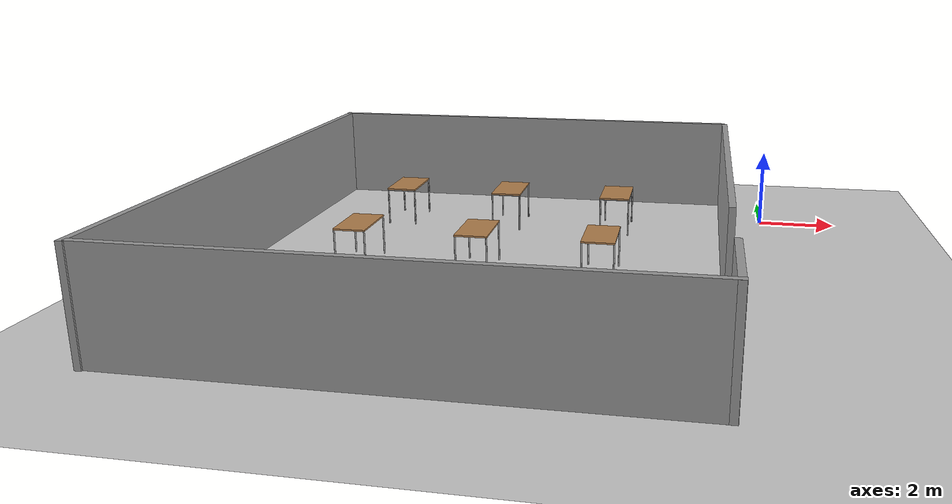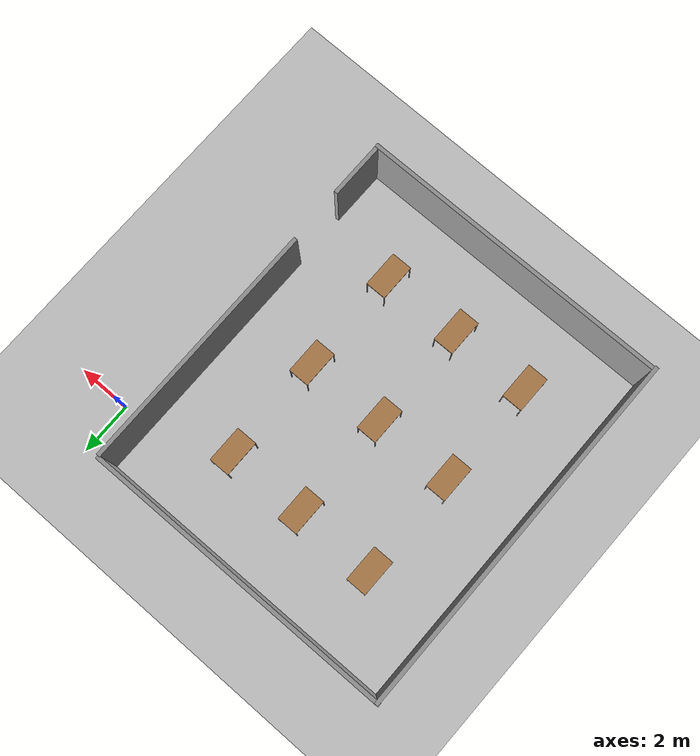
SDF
<sdf version="1.6">
 <world name="default">
  <model name="ground_plane">
   <static>1</static>
   <link name="link">
    <collision name="collision">
     <geometry><plane><normal>0 0 1</normal><size>100 100</size></plane></geometry>
     <surface><friction><ode><mu>100</mu><mu2>50</mu2></ode></friction></surface>
    </collision>
    <visual name="visual">
     <cast_shadows>0</cast_shadows>
     <geometry><plane><normal>0 0 1</normal><size>100 100</size></plane></geometry>
     <material>
      <script><uri>file://media/materials/scripts/gazebo.material</uri><name>Gazebo/Grey</name></script>
     </material>
    </visual>
   </link>
  </model>
  <light name="sun" type="directional">
   <pose>0 0 10 0 -0 0</pose>
   <diffuse>0.8 0.8 0.8 1</diffuse>
   <specular>0.1 0.1 0.1 1</specular>
   <attenuation>
    <range>1000</range>
    <constant>0.9</constant>
    <linear>0.01</linear>
    <quadratic>0.001</quadratic>
   </attenuation>
   <direction>-0.5 0.5 -1</direction>
  </light>
  <gravity>0 0 -9.8</gravity>
  <magnetic_field>6e-06 2.3e-05 -4.2e-05</magnetic_field>
  <atmosphere type="adiabatic"/>
  <physics name="default_physics" default="0" type="ode">
   <max_step_size>0.001</max_step_size>
   <real_time_factor>1</real_time_factor>
   <real_time_update_rate>1000</real_time_update_rate>
  </physics>
  <scene><ambient>0.4 0.4 0.4 1</ambient><background>0.7 0.7 0.7 1</background><shadows>1</shadows></scene>
  <spherical_coordinates>
   <surface_model>EARTH_WGS84</surface_model>
   <latitude_deg>0</latitude_deg>
   <longitude_deg>0</longitude_deg>
   <elevation>0</elevation>
   <heading_deg>0</heading_deg>
  </spherical_coordinates>
  <model name="room_0_clone_1_clone">
   <link name="Wall_11">
    <pose>-7.27476 -5.96527 0 0 -0 3.14159</pose>
    <visual name="Wall_11_Visual">
     <pose>0 0 1.25 0 -0 0</pose>
     <geometry><box><size>2.25 0.15 2.5</size></box></geometry>
     <material>
      <script><uri>file://media/materials/scripts/gazebo.material</uri><name>Gazebo/Grey</name></script>
      <ambient>1 1 1 1</ambient>
      <diffuse>0.7 0.7 0.7 1</diffuse>
      <specular>0.01 0.01 0.01 1</specular>
      <emissive>0 0 0 1</emissive>
     </material>
    </visual>
    <collision name="Wall_11_Collision">
     <pose>0 0 1.25 0 -0 0</pose>
     <geometry><box><size>2.25 0.15 2.5</size></box></geometry>
     <surface>
      <friction>
       <ode><mu>1</mu><mu2>1</mu2><fdir1>0 0 0</fdir1><slip1>0</slip1><slip2>0</slip2></ode>
       <torsional>
        <coefficient>1</coefficient>
        <patch_radius>0</patch_radius>
        <surface_radius>0</surface_radius>
        <use_patch_radius>1</use_patch_radius>
        <ode><slip>0</slip></ode>
       </torsional>
      </friction>
      <bounce><restitution_coefficient>0</restitution_coefficient><threshold>1e+06</threshold></bounce>
      <contact>
       <collide_without_contact>0</collide_without_contact>
       <collide_without_contact_bitmask>1</collide_without_contact_bitmask>
       <collide_bitmask>1</collide_bitmask>
       <ode>
        <soft_cfm>0</soft_cfm>
        <soft_erp>0.2</soft_erp>
        <kp>1e+13</kp>
        <kd>1</kd>
        <max_vel>0.01</max_vel>
        <min_depth>0</min_depth>
       </ode>
       <bullet>
        <split_impulse>1</split_impulse>
        <split_impulse_penetration_threshold>-0.01</split_impulse_penetration_threshold>
        <soft_cfm>0</soft_cfm>
        <soft_erp>0.2</soft_erp>
        <kp>1e+13</kp>
        <kd>1</kd>
       </bullet>
      </contact>
     </surface>
    </collision>
   </link>
   <link name="Wall_12">
    <pose>-8.32013 -0.128243 0 0 -0 1.5708</pose>
    <inertial>
     <inertia><ixx>nan</ixx><ixy>0</ixy><ixz>0</ixz><iyy>nan</iyy><iyz>0</iyz><izz>nan</izz></inertia>
     <mass>0</mass>
    </inertial>
    <visual name="Wall_12_Visual">
     <pose>0 0 1.25 0 -0 0</pose>
     <geometry><box><size>11.8388 0.15 2.5</size></box></geometry>
     <material>
      <script><uri>file://media/materials/scripts/gazebo.material</uri><name>Gazebo/Grey</name></script>
      <ambient>1 1 1 1</ambient>
      <diffuse>0.7 0.7 0.7 1</diffuse>
      <specular>0.01 0.01 0.01 1</specular>
      <emissive>0 0 0 1</emissive>
     </material>
    </visual>
    <collision name="Wall_12_Collision">
     <pose>0 0 1.25 0 -0 0</pose>
     <geometry><box><size>11.8388 0.15 2.5</size></box></geometry>
     <surface>
      <friction>
       <ode><mu>1</mu><mu2>1</mu2><fdir1>0 0 0</fdir1><slip1>0</slip1><slip2>0</slip2></ode>
       <torsional>
        <coefficient>1</coefficient>
        <patch_radius>0</patch_radius>
        <surface_radius>0</surface_radius>
        <use_patch_radius>1</use_patch_radius>
        <ode><slip>0</slip></ode>
       </torsional>
      </friction>
      <bounce><restitution_coefficient>0</restitution_coefficient><threshold>1e+06</threshold></bounce>
      <contact>
       <collide_without_contact>0</collide_without_contact>
       <collide_without_contact_bitmask>1</collide_without_contact_bitmask>
       <collide_bitmask>1</collide_bitmask>
       <ode>
        <soft_cfm>0</soft_cfm>
        <soft_erp>0.2</soft_erp>
        <kp>1e+13</kp>
        <kd>1</kd>
        <max_vel>0.01</max_vel>
        <min_depth>0</min_depth>
       </ode>
       <bullet>
        <split_impulse>1</split_impulse>
        <split_impulse_penetration_threshold>-0.01</split_impulse_penetration_threshold>
        <soft_cfm>0</soft_cfm>
        <soft_erp>0.2</soft_erp>
        <kp>1e+13</kp>
        <kd>1</kd>
       </bullet>
      </contact>
     </surface>
    </collision>
   </link>
   <link name="Wall_12_clone">
    <pose>5.50521 -0.011416 0 0 -0 1.57222</pose>
    <inertial>
     <inertia><ixx>nan</ixx><ixy>0</ixy><ixz>0</ixz><iyy>nan</iyy><iyz>0</iyz><izz>nan</izz></inertia>
     <mass>0</mass>
    </inertial>
    <visual name="Wall_12_Visual">
     <pose>0 0 1.25 0 -0 0</pose>
     <geometry><box><size>11.8388 0.15 2.5</size></box></geometry>
     <material>
      <script><uri>file://media/materials/scripts/gazebo.material</uri><name>Gazebo/Grey</name></script>
      <ambient>1 1 1 1</ambient>
      <diffuse>0.7 0.7 0.7 1</diffuse>
      <specular>0.01 0.01 0.01 1</specular>
      <emissive>0 0 0 1</emissive>
      <shader type="pixel"/>
     </material>
    </visual>
    <collision name="Wall_12_Collision">
     <pose>0 0 1.25 0 -0 0</pose>
     <geometry><box><size>11.8388 0.15 2.5</size></box></geometry>
     <surface>
      <friction>
       <ode><mu>1</mu><mu2>1</mu2><fdir1>0 0 0</fdir1><slip1>0</slip1><slip2>0</slip2></ode>
       <torsional>
        <coefficient>1</coefficient>
        <patch_radius>0</patch_radius>
        <surface_radius>0</surface_radius>
        <use_patch_radius>1</use_patch_radius>
        <ode><slip>0</slip></ode>
       </torsional>
      </friction>
      <bounce><restitution_coefficient>0</restitution_coefficient><threshold>1e+06</threshold></bounce>
      <contact>
       <collide_without_contact>0</collide_without_contact>
       <collide_without_contact_bitmask>1</collide_without_contact_bitmask>
       <collide_bitmask>1</collide_bitmask>
       <ode>
        <soft_cfm>0</soft_cfm>
        <soft_erp>0.2</soft_erp>
        <kp>1e+13</kp>
        <kd>1</kd>
        <max_vel>0.01</max_vel>
        <min_depth>0</min_depth>
       </ode>
       <bullet>
        <split_impulse>1</split_impulse>
        <split_impulse_penetration_threshold>-0.01</split_impulse_penetration_threshold>
        <soft_cfm>0</soft_cfm>
        <soft_erp>0.2</soft_erp>
        <kp>1e+13</kp>
        <kd>1</kd>
       </bullet>
      </contact>
     </surface>
    </collision>
   </link>
   <link name="Wall_13">
    <pose>-1.43267 5.8153 0 0 -0 0</pose>
    <visual name="Wall_13_Visual">
     <pose>0 0 1.25 0 -0 0</pose>
     <geometry><box><size>14 0.15 2.5</size></box></geometry>
     <material>
      <script><uri>file://media/materials/scripts/gazebo.material</uri><name>Gazebo/Grey</name></script>
      <ambient>1 1 1 1</ambient>
      <diffuse>0.7 0.7 0.7 1</diffuse>
      <specular>0.01 0.01 0.01 1</specular>
      <emissive>0 0 0 1</emissive>
     </material>
    </visual>
    <collision name="Wall_13_Collision">
     <pose>0 0 1.25 0 -0 0</pose>
     <geometry><box><size>14 0.15 2.5</size></box></geometry>
     <surface>
      <friction>
       <ode><mu>1</mu><mu2>1</mu2><fdir1>0 0 0</fdir1><slip1>0</slip1><slip2>0</slip2></ode>
       <torsional>
        <coefficient>1</coefficient>
        <patch_radius>0</patch_radius>
        <surface_radius>0</surface_radius>
        <use_patch_radius>1</use_patch_radius>
        <ode><slip>0</slip></ode>
       </torsional>
      </friction>
      <bounce><restitution_coefficient>0</restitution_coefficient><threshold>1e+06</threshold></bounce>
      <contact>
       <collide_without_contact>0</collide_without_contact>
       <collide_without_contact_bitmask>1</collide_without_contact_bitmask>
       <collide_bitmask>1</collide_bitmask>
       <ode>
        <soft_cfm>0</soft_cfm>
        <soft_erp>0.2</soft_erp>
        <kp>1e+13</kp>
        <kd>1</kd>
        <max_vel>0.01</max_vel>
        <min_depth>0</min_depth>
       </ode>
       <bullet>
        <split_impulse>1</split_impulse>
        <split_impulse_penetration_threshold>-0.01</split_impulse_penetration_threshold>
        <soft_cfm>0</soft_cfm>
        <soft_erp>0.2</soft_erp>
        <kp>1e+13</kp>
        <kd>1</kd>
       </bullet>
      </contact>
     </surface>
    </collision>
   </link>
   <link name="Wall_8">
    <pose>0.697833 -5.91751 0 0 -0 0</pose>
    <inertial>
     <inertia><ixx>nan</ixx><ixy>0</ixy><ixz>0</ixz><iyy>nan</iyy><iyz>0</iyz><izz>nan</izz></inertia>
     <mass>0</mass>
    </inertial>
    <visual name="Wall_8_Visual">
     <pose>0 0 1.25 0 -0 0</pose>
     <geometry><box><size>9.56302 0.15 2.5</size></box></geometry>
     <material>
      <script><uri>file://media/materials/scripts/gazebo.material</uri><name>Gazebo/Grey</name></script>
      <ambient>1 1 1 1</ambient>
      <diffuse>0.7 0.7 0.7 1</diffuse>
      <specular>0.01 0.01 0.01 1</specular>
      <emissive>0 0 0 1</emissive>
     </material>
    </visual>
    <collision name="Wall_8_Collision">
     <pose>0 0 1.25 0 -0 0</pose>
     <geometry><box><size>9.56302 0.15 2.5</size></box></geometry>
     <surface>
      <friction>
       <ode><mu>1</mu><mu2>1</mu2><fdir1>0 0 0</fdir1><slip1>0</slip1><slip2>0</slip2></ode>
       <torsional>
        <coefficient>1</coefficient>
        <patch_radius>0</patch_radius>
        <surface_radius>0</surface_radius>
        <use_patch_radius>1</use_patch_radius>
        <ode><slip>0</slip></ode>
       </torsional>
      </friction>
      <bounce><restitution_coefficient>0</restitution_coefficient><threshold>1e+06</threshold></bounce>
      <contact>
       <collide_without_contact>0</collide_without_contact>
       <collide_without_contact_bitmask>1</collide_without_contact_bitmask>
       <collide_bitmask>1</collide_bitmask>
       <ode>
        <soft_cfm>0</soft_cfm>
        <soft_erp>0.2</soft_erp>
        <kp>1e+13</kp>
        <kd>1</kd>
        <max_vel>0.01</max_vel>
        <min_depth>0</min_depth>
       </ode>
       <bullet>
        <split_impulse>1</split_impulse>
        <split_impulse_penetration_threshold>-0.01</split_impulse_penetration_threshold>
        <soft_cfm>0</soft_cfm>
        <soft_erp>0.2</soft_erp>
        <kp>1e+13</kp>
        <kd>1</kd>
       </bullet>
      </contact>
     </surface>
    </collision>
   </link>
   <model name="table">
    <static>0</static>
    <link name="link">
     <collision name="surface">
      <pose>0 0 1 0 -0 0</pose>
      <geometry><box><size>1.5 0.8 0.03</size></box></geometry>
      <surface><friction><ode><mu>0.6</mu><mu2>0.6</mu2></ode></friction></surface>
     </collision>
     <visual name="visual1">
      <pose>0 0 1 0 -0 0</pose>
      <geometry><box><size>1.4 0.8 0.04</size></box></geometry>
      <material>
       <script><uri>file://media/materials/scripts/gazebo.material</uri><name>Gazebo/Wood</name></script>
      </material>
     </visual>
     <collision name="front_left_leg">
      <pose>0.68 0.38 0.5 0 -0 0</pose>
      <geometry><cylinder><radius>0.02</radius><length>1</length></cylinder></geometry>
     </collision>
     <visual name="front_left_leg">
      <pose>0.68 0.38 0.5 0 -0 0</pose>
      <geometry><cylinder><radius>0.02</radius><length>1</length></cylinder></geometry>
      <material>
       <script><uri>file://media/materials/scripts/gazebo.material</uri><name>Gazebo/Grey</name></script>
      </material>
     </visual>
     <collision name="front_right_leg">
      <pose>0.68 -0.38 0.5 0 -0 0</pose>
      <geometry><cylinder><radius>0.02</radius><length>1</length></cylinder></geometry>
     </collision>
     <visual name="front_right_leg">
      <pose>0.68 -0.38 0.5 0 -0 0</pose>
      <geometry><cylinder><radius>0.02</radius><length>1</length></cylinder></geometry>
      <material>
       <script><uri>file://media/materials/scripts/gazebo.material</uri><name>Gazebo/Grey</name></script>
      </material>
     </visual>
     <collision name="back_right_leg">
      <pose>-0.68 -0.38 0.5 0 -0 0</pose>
      <geometry><cylinder><radius>0.02</radius><length>1</length></cylinder></geometry>
     </collision>
     <visual name="back_right_leg">
      <pose>-0.68 -0.38 0.5 0 -0 0</pose>
      <geometry><cylinder><radius>0.02</radius><length>1</length></cylinder></geometry>
      <material>
       <script><uri>file://media/materials/scripts/gazebo.material</uri><name>Gazebo/Grey</name></script>
      </material>
     </visual>
     <collision name="back_left_leg">
      <pose>-0.68 0.38 0.5 0 -0 0</pose>
      <geometry><cylinder><radius>0.02</radius><length>1</length></cylinder></geometry>
     </collision>
     <visual name="back_left_leg">
      <pose>-0.68 0.38 0.5 0 -0 0</pose>
      <geometry><cylinder><radius>0.02</radius><length>1</length></cylinder></geometry>
      <material>
       <script><uri>file://media/materials/scripts/gazebo.material</uri><name>Gazebo/Grey</name></script>
      </material>
     </visual>
     <inertial>
      <inertia><ixx>1</ixx><ixy>0</ixy><ixz>0</ixz><iyy>1</iyy><iyz>0</iyz><izz>1</izz></inertia>
      <mass>1</mass>
     </inertial>
    </link>
    <pose>2.53349 2.99234 0 0 -0 0</pose>
   </model>
   <model name="table_clone">
    <static>0</static>
    <link name="link">
     <collision name="surface">
      <pose>0 0 1 0 -0 0</pose>
      <geometry><box><size>1.5 0.8 0.03</size></box></geometry>
      <surface><friction><ode><mu>0.6</mu><mu2>0.6</mu2></ode></friction></surface>
     </collision>
     <visual name="visual1">
      <pose>0 0 1 0 -0 0</pose>
      <geometry><box><size>1.4 0.8 0.04</size></box></geometry>
      <material>
       <script><uri>file://media/materials/scripts/gazebo.material</uri><name>Gazebo/Wood</name></script>
      </material>
     </visual>
     <collision name="front_left_leg">
      <pose>0.68 0.38 0.5 0 -0 0</pose>
      <geometry><cylinder><radius>0.02</radius><length>1</length></cylinder></geometry>
     </collision>
     <visual name="front_left_leg">
      <pose>0.68 0.38 0.5 0 -0 0</pose>
      <geometry><cylinder><radius>0.02</radius><length>1</length></cylinder></geometry>
      <material>
       <script><uri>file://media/materials/scripts/gazebo.material</uri><name>Gazebo/Grey</name></script>
      </material>
     </visual>
     <collision name="front_right_leg">
      <pose>0.68 -0.38 0.5 0 -0 0</pose>
      <geometry><cylinder><radius>0.02</radius><length>1</length></cylinder></geometry>
     </collision>
     <visual name="front_right_leg">
      <pose>0.68 -0.38 0.5 0 -0 0</pose>
      <geometry><cylinder><radius>0.02</radius><length>1</length></cylinder></geometry>
      <material>
       <script><uri>file://media/materials/scripts/gazebo.material</uri><name>Gazebo/Grey</name></script>
      </material>
     </visual>
     <collision name="back_right_leg">
      <pose>-0.68 -0.38 0.5 0 -0 0</pose>
      <geometry><cylinder><radius>0.02</radius><length>1</length></cylinder></geometry>
     </collision>
     <visual name="back_right_leg">
      <pose>-0.68 -0.38 0.5 0 -0 0</pose>
      <geometry><cylinder><radius>0.02</radius><length>1</length></cylinder></geometry>
      <material>
       <script><uri>file://media/materials/scripts/gazebo.material</uri><name>Gazebo/Grey</name></script>
      </material>
     </visual>
     <collision name="back_left_leg">
      <pose>-0.68 0.38 0.5 0 -0 0</pose>
      <geometry><cylinder><radius>0.02</radius><length>1</length></cylinder></geometry>
     </collision>
     <visual name="back_left_leg">
      <pose>-0.68 0.38 0.5 0 -0 0</pose>
      <geometry><cylinder><radius>0.02</radius><length>1</length></cylinder></geometry>
      <material>
       <script><uri>file://media/materials/scripts/gazebo.material</uri><name>Gazebo/Grey</name></script>
      </material>
     </visual>
     <inertial>
      <inertia><ixx>1</ixx><ixy>0</ixy><ixz>0</ixz><iyy>1</iyy><iyz>0</iyz><izz>1</izz></inertia>
      <mass>1</mass>
     </inertial>
    </link>
    <pose>2.50521 -0.015668 0 0 -0 0.001418</pose>
   </model>
   <model name="table_clone_0">
    <static>0</static>
    <link name="link">
     <collision name="surface">
      <pose>0 0 1 0 -0 0</pose>
      <geometry><box><size>1.5 0.8 0.03</size></box></geometry>
      <surface><friction><ode><mu>0.6</mu><mu2>0.6</mu2></ode></friction></surface>
     </collision>
     <visual name="visual1">
      <pose>0 0 1 0 -0 0</pose>
      <geometry><box><size>1.4 0.8 0.04</size></box></geometry>
      <material>
       <script><uri>file://media/materials/scripts/gazebo.material</uri><name>Gazebo/Wood</name></script>
      </material>
     </visual>
     <collision name="front_left_leg">
      <pose>0.68 0.38 0.5 0 -0 0</pose>
      <geometry><cylinder><radius>0.02</radius><length>1</length></cylinder></geometry>
     </collision>
     <visual name="front_left_leg">
      <pose>0.68 0.38 0.5 0 -0 0</pose>
      <geometry><cylinder><radius>0.02</radius><length>1</length></cylinder></geometry>
      <material>
       <script><uri>file://media/materials/scripts/gazebo.material</uri><name>Gazebo/Grey</name></script>
      </material>
     </visual>
     <collision name="front_right_leg">
      <pose>0.68 -0.38 0.5 0 -0 0</pose>
      <geometry><cylinder><radius>0.02</radius><length>1</length></cylinder></geometry>
     </collision>
     <visual name="front_right_leg">
      <pose>0.68 -0.38 0.5 0 -0 0</pose>
      <geometry><cylinder><radius>0.02</radius><length>1</length></cylinder></geometry>
      <material>
       <script><uri>file://media/materials/scripts/gazebo.material</uri><name>Gazebo/Grey</name></script>
      </material>
     </visual>
     <collision name="back_right_leg">
      <pose>-0.68 -0.38 0.5 0 -0 0</pose>
      <geometry><cylinder><radius>0.02</radius><length>1</length></cylinder></geometry>
     </collision>
     <visual name="back_right_leg">
      <pose>-0.68 -0.38 0.5 0 -0 0</pose>
      <geometry><cylinder><radius>0.02</radius><length>1</length></cylinder></geometry>
      <material>
       <script><uri>file://media/materials/scripts/gazebo.material</uri><name>Gazebo/Grey</name></script>
      </material>
     </visual>
     <collision name="back_left_leg">
      <pose>-0.68 0.38 0.5 0 -0 0</pose>
      <geometry><cylinder><radius>0.02</radius><length>1</length></cylinder></geometry>
     </collision>
     <visual name="back_left_leg">
      <pose>-0.68 0.38 0.5 0 -0 0</pose>
      <geometry><cylinder><radius>0.02</radius><length>1</length></cylinder></geometry>
      <material>
       <script><uri>file://media/materials/scripts/gazebo.material</uri><name>Gazebo/Grey</name></script>
      </material>
     </visual>
     <inertial>
      <inertia><ixx>1</ixx><ixy>0</ixy><ixz>0</ixz><iyy>1</iyy><iyz>0</iyz><izz>1</izz></inertia>
      <mass>1</mass>
     </inertial>
    </link>
    <pose>2.50947 -3.01566 0 0 -0 0.001418</pose>
   </model>
   <model name="table_clone_1">
    <static>0</static>
    <link name="link">
     <collision name="surface">
      <pose>0 0 1 0 -0 0</pose>
      <geometry><box><size>1.5 0.8 0.03</size></box></geometry>
      <surface><friction><ode><mu>0.6</mu><mu2>0.6</mu2></ode></friction></surface>
     </collision>
     <visual name="visual1">
      <pose>0 0 1 0 -0 0</pose>
      <geometry><box><size>1.4 0.8 0.04</size></box></geometry>
      <material>
       <script><uri>file://media/materials/scripts/gazebo.material</uri><name>Gazebo/Wood</name></script>
      </material>
     </visual>
     <collision name="front_left_leg">
      <pose>0.68 0.38 0.5 0 -0 0</pose>
      <geometry><cylinder><radius>0.02</radius><length>1</length></cylinder></geometry>
     </collision>
     <visual name="front_left_leg">
      <pose>0.68 0.38 0.5 0 -0 0</pose>
      <geometry><cylinder><radius>0.02</radius><length>1</length></cylinder></geometry>
      <material>
       <script><uri>file://media/materials/scripts/gazebo.material</uri><name>Gazebo/Grey</name></script>
      </material>
     </visual>
     <collision name="front_right_leg">
      <pose>0.68 -0.38 0.5 0 -0 0</pose>
      <geometry><cylinder><radius>0.02</radius><length>1</length></cylinder></geometry>
     </collision>
     <visual name="front_right_leg">
      <pose>0.68 -0.38 0.5 0 -0 0</pose>
      <geometry><cylinder><radius>0.02</radius><length>1</length></cylinder></geometry>
      <material>
       <script><uri>file://media/materials/scripts/gazebo.material</uri><name>Gazebo/Grey</name></script>
      </material>
     </visual>
     <collision name="back_right_leg">
      <pose>-0.68 -0.38 0.5 0 -0 0</pose>
      <geometry><cylinder><radius>0.02</radius><length>1</length></cylinder></geometry>
     </collision>
     <visual name="back_right_leg">
      <pose>-0.68 -0.38 0.5 0 -0 0</pose>
      <geometry><cylinder><radius>0.02</radius><length>1</length></cylinder></geometry>
      <material>
       <script><uri>file://media/materials/scripts/gazebo.material</uri><name>Gazebo/Grey</name></script>
      </material>
     </visual>
     <collision name="back_left_leg">
      <pose>-0.68 0.38 0.5 0 -0 0</pose>
      <geometry><cylinder><radius>0.02</radius><length>1</length></cylinder></geometry>
     </collision>
     <visual name="back_left_leg">
      <pose>-0.68 0.38 0.5 0 -0 0</pose>
      <geometry><cylinder><radius>0.02</radius><length>1</length></cylinder></geometry>
      <material>
       <script><uri>file://media/materials/scripts/gazebo.material</uri><name>Gazebo/Grey</name></script>
      </material>
     </visual>
     <inertial>
      <inertia><ixx>1</ixx><ixy>0</ixy><ixz>0</ixz><iyy>1</iyy><iyz>0</iyz><izz>1</izz></inertia>
      <mass>1</mass>
     </inertial>
    </link>
    <pose>-1.49053 -3.02134 0 0 -0 0.001418</pose>
   </model>
   <model name="table_clone_2">
    <static>0</static>
    <link name="link">
     <collision name="surface">
      <pose>0 0 1 0 -0 0</pose>
      <geometry><box><size>1.5 0.8 0.03</size></box></geometry>
      <surface><friction><ode><mu>0.6</mu><mu2>0.6</mu2></ode></friction></surface>
     </collision>
     <visual name="visual1">
      <pose>0 0 1 0 -0 0</pose>
      <geometry><box><size>1.4 0.8 0.04</size></box></geometry>
      <material>
       <script><uri>file://media/materials/scripts/gazebo.material</uri><name>Gazebo/Wood</name></script>
      </material>
     </visual>
     <collision name="front_left_leg">
      <pose>0.68 0.38 0.5 0 -0 0</pose>
      <geometry><cylinder><radius>0.02</radius><length>1</length></cylinder></geometry>
     </collision>
     <visual name="front_left_leg">
      <pose>0.68 0.38 0.5 0 -0 0</pose>
      <geometry><cylinder><radius>0.02</radius><length>1</length></cylinder></geometry>
      <material>
       <script><uri>file://media/materials/scripts/gazebo.material</uri><name>Gazebo/Grey</name></script>
      </material>
     </visual>
     <collision name="front_right_leg">
      <pose>0.68 -0.38 0.5 0 -0 0</pose>
      <geometry><cylinder><radius>0.02</radius><length>1</length></cylinder></geometry>
     </collision>
     <visual name="front_right_leg">
      <pose>0.68 -0.38 0.5 0 -0 0</pose>
      <geometry><cylinder><radius>0.02</radius><length>1</length></cylinder></geometry>
      <material>
       <script><uri>file://media/materials/scripts/gazebo.material</uri><name>Gazebo/Grey</name></script>
      </material>
     </visual>
     <collision name="back_right_leg">
      <pose>-0.68 -0.38 0.5 0 -0 0</pose>
      <geometry><cylinder><radius>0.02</radius><length>1</length></cylinder></geometry>
     </collision>
     <visual name="back_right_leg">
      <pose>-0.68 -0.38 0.5 0 -0 0</pose>
      <geometry><cylinder><radius>0.02</radius><length>1</length></cylinder></geometry>
      <material>
       <script><uri>file://media/materials/scripts/gazebo.material</uri><name>Gazebo/Grey</name></script>
      </material>
     </visual>
     <collision name="back_left_leg">
      <pose>-0.68 0.38 0.5 0 -0 0</pose>
      <geometry><cylinder><radius>0.02</radius><length>1</length></cylinder></geometry>
     </collision>
     <visual name="back_left_leg">
      <pose>-0.68 0.38 0.5 0 -0 0</pose>
      <geometry><cylinder><radius>0.02</radius><length>1</length></cylinder></geometry>
      <material>
       <script><uri>file://media/materials/scripts/gazebo.material</uri><name>Gazebo/Grey</name></script>
      </material>
     </visual>
     <inertial>
      <inertia><ixx>1</ixx><ixy>0</ixy><ixz>0</ixz><iyy>1</iyy><iyz>0</iyz><izz>1</izz></inertia>
      <mass>1</mass>
     </inertial>
    </link>
    <pose>-1.49478 -0.021339 0 0 -0 0.001418</pose>
   </model>
   <model name="table_clone_3">
    <static>0</static>
    <link name="link">
     <collision name="surface">
      <pose>0 0 1 0 -0 0</pose>
      <geometry><box><size>1.5 0.8 0.03</size></box></geometry>
      <surface><friction><ode><mu>0.6</mu><mu2>0.6</mu2></ode></friction></surface>
     </collision>
     <visual name="visual1">
      <pose>0 0 1 0 -0 0</pose>
      <geometry><box><size>1.4 0.8 0.04</size></box></geometry>
      <material>
       <script><uri>file://media/materials/scripts/gazebo.material</uri><name>Gazebo/Wood</name></script>
      </material>
     </visual>
     <collision name="front_left_leg">
      <pose>0.68 0.38 0.5 0 -0 0</pose>
      <geometry><cylinder><radius>0.02</radius><length>1</length></cylinder></geometry>
     </collision>
     <visual name="front_left_leg">
      <pose>0.68 0.38 0.5 0 -0 0</pose>
      <geometry><cylinder><radius>0.02</radius><length>1</length></cylinder></geometry>
      <material>
       <script><uri>file://media/materials/scripts/gazebo.material</uri><name>Gazebo/Grey</name></script>
      </material>
     </visual>
     <collision name="front_right_leg">
      <pose>0.68 -0.38 0.5 0 -0 0</pose>
      <geometry><cylinder><radius>0.02</radius><length>1</length></cylinder></geometry>
     </collision>
     <visual name="front_right_leg">
      <pose>0.68 -0.38 0.5 0 -0 0</pose>
      <geometry><cylinder><radius>0.02</radius><length>1</length></cylinder></geometry>
      <material>
       <script><uri>file://media/materials/scripts/gazebo.material</uri><name>Gazebo/Grey</name></script>
      </material>
     </visual>
     <collision name="back_right_leg">
      <pose>-0.68 -0.38 0.5 0 -0 0</pose>
      <geometry><cylinder><radius>0.02</radius><length>1</length></cylinder></geometry>
     </collision>
     <visual name="back_right_leg">
      <pose>-0.68 -0.38 0.5 0 -0 0</pose>
      <geometry><cylinder><radius>0.02</radius><length>1</length></cylinder></geometry>
      <material>
       <script><uri>file://media/materials/scripts/gazebo.material</uri><name>Gazebo/Grey</name></script>
      </material>
     </visual>
     <collision name="back_left_leg">
      <pose>-0.68 0.38 0.5 0 -0 0</pose>
      <geometry><cylinder><radius>0.02</radius><length>1</length></cylinder></geometry>
     </collision>
     <visual name="back_left_leg">
      <pose>-0.68 0.38 0.5 0 -0 0</pose>
      <geometry><cylinder><radius>0.02</radius><length>1</length></cylinder></geometry>
      <material>
       <script><uri>file://media/materials/scripts/gazebo.material</uri><name>Gazebo/Grey</name></script>
      </material>
     </visual>
     <inertial>
      <inertia><ixx>1</ixx><ixy>0</ixy><ixz>0</ixz><iyy>1</iyy><iyz>0</iyz><izz>1</izz></inertia>
      <mass>1</mass>
     </inertial>
    </link>
    <pose>-1.49903 2.97866 0 0 -0 0.001418</pose>
   </model>
   <model name="table_clone_4">
    <static>0</static>
    <link name="link">
     <collision name="surface">
      <pose>0 0 1 0 -0 0</pose>
      <geometry><box><size>1.5 0.8 0.03</size></box></geometry>
      <surface><friction><ode><mu>0.6</mu><mu2>0.6</mu2></ode></friction></surface>
     </collision>
     <visual name="visual1">
      <pose>0 0 1 0 -0 0</pose>
      <geometry><box><size>1.4 0.8 0.04</size></box></geometry>
      <material>
       <script><uri>file://media/materials/scripts/gazebo.material</uri><name>Gazebo/Wood</name></script>
      </material>
     </visual>
     <collision name="front_left_leg">
      <pose>0.68 0.38 0.5 0 -0 0</pose>
      <geometry><cylinder><radius>0.02</radius><length>1</length></cylinder></geometry>
     </collision>
     <visual name="front_left_leg">
      <pose>0.68 0.38 0.5 0 -0 0</pose>
      <geometry><cylinder><radius>0.02</radius><length>1</length></cylinder></geometry>
      <material>
       <script><uri>file://media/materials/scripts/gazebo.material</uri><name>Gazebo/Grey</name></script>
      </material>
     </visual>
     <collision name="front_right_leg">
      <pose>0.68 -0.38 0.5 0 -0 0</pose>
      <geometry><cylinder><radius>0.02</radius><length>1</length></cylinder></geometry>
     </collision>
     <visual name="front_right_leg">
      <pose>0.68 -0.38 0.5 0 -0 0</pose>
      <geometry><cylinder><radius>0.02</radius><length>1</length></cylinder></geometry>
      <material>
       <script><uri>file://media/materials/scripts/gazebo.material</uri><name>Gazebo/Grey</name></script>
      </material>
     </visual>
     <collision name="back_right_leg">
      <pose>-0.68 -0.38 0.5 0 -0 0</pose>
      <geometry><cylinder><radius>0.02</radius><length>1</length></cylinder></geometry>
     </collision>
     <visual name="back_right_leg">
      <pose>-0.68 -0.38 0.5 0 -0 0</pose>
      <geometry><cylinder><radius>0.02</radius><length>1</length></cylinder></geometry>
      <material>
       <script><uri>file://media/materials/scripts/gazebo.material</uri><name>Gazebo/Grey</name></script>
      </material>
     </visual>
     <collision name="back_left_leg">
      <pose>-0.68 0.38 0.5 0 -0 0</pose>
      <geometry><cylinder><radius>0.02</radius><length>1</length></cylinder></geometry>
     </collision>
     <visual name="back_left_leg">
      <pose>-0.68 0.38 0.5 0 -0 0</pose>
      <geometry><cylinder><radius>0.02</radius><length>1</length></cylinder></geometry>
      <material>
       <script><uri>file://media/materials/scripts/gazebo.material</uri><name>Gazebo/Grey</name></script>
      </material>
     </visual>
     <inertial>
      <inertia><ixx>1</ixx><ixy>0</ixy><ixz>0</ixz><iyy>1</iyy><iyz>0</iyz><izz>1</izz></inertia>
      <mass>1</mass>
     </inertial>
    </link>
    <pose>-5.49903 2.97299 0 0 -0 0.001418</pose>
   </model>
   <model name="table_clone_5">
    <static>0</static>
    <link name="link">
     <collision name="surface">
      <pose>0 0 1 0 -0 0</pose>
      <geometry><box><size>1.5 0.8 0.03</size></box></geometry>
      <surface><friction><ode><mu>0.6</mu><mu2>0.6</mu2></ode></friction></surface>
     </collision>
     <visual name="visual1">
      <pose>0 0 1 0 -0 0</pose>
      <geometry><box><size>1.4 0.8 0.04</size></box></geometry>
      <material>
       <script><uri>file://media/materials/scripts/gazebo.material</uri><name>Gazebo/Wood</name></script>
      </material>
     </visual>
     <collision name="front_left_leg">
      <pose>0.68 0.38 0.5 0 -0 0</pose>
      <geometry><cylinder><radius>0.02</radius><length>1</length></cylinder></geometry>
     </collision>
     <visual name="front_left_leg">
      <pose>0.68 0.38 0.5 0 -0 0</pose>
      <geometry><cylinder><radius>0.02</radius><length>1</length></cylinder></geometry>
      <material>
       <script><uri>file://media/materials/scripts/gazebo.material</uri><name>Gazebo/Grey</name></script>
      </material>
     </visual>
     <collision name="front_right_leg">
      <pose>0.68 -0.38 0.5 0 -0 0</pose>
      <geometry><cylinder><radius>0.02</radius><length>1</length></cylinder></geometry>
     </collision>
     <visual name="front_right_leg">
      <pose>0.68 -0.38 0.5 0 -0 0</pose>
      <geometry><cylinder><radius>0.02</radius><length>1</length></cylinder></geometry>
      <material>
       <script><uri>file://media/materials/scripts/gazebo.material</uri><name>Gazebo/Grey</name></script>
      </material>
     </visual>
     <collision name="back_right_leg">
      <pose>-0.68 -0.38 0.5 0 -0 0</pose>
      <geometry><cylinder><radius>0.02</radius><length>1</length></cylinder></geometry>
     </collision>
     <visual name="back_right_leg">
      <pose>-0.68 -0.38 0.5 0 -0 0</pose>
      <geometry><cylinder><radius>0.02</radius><length>1</length></cylinder></geometry>
      <material>
       <script><uri>file://media/materials/scripts/gazebo.material</uri><name>Gazebo/Grey</name></script>
      </material>
     </visual>
     <collision name="back_left_leg">
      <pose>-0.68 0.38 0.5 0 -0 0</pose>
      <geometry><cylinder><radius>0.02</radius><length>1</length></cylinder></geometry>
     </collision>
     <visual name="back_left_leg">
      <pose>-0.68 0.38 0.5 0 -0 0</pose>
      <geometry><cylinder><radius>0.02</radius><length>1</length></cylinder></geometry>
      <material>
       <script><uri>file://media/materials/scripts/gazebo.material</uri><name>Gazebo/Grey</name></script>
      </material>
     </visual>
     <inertial>
      <inertia><ixx>1</ixx><ixy>0</ixy><ixz>0</ixz><iyy>1</iyy><iyz>0</iyz><izz>1</izz></inertia>
      <mass>1</mass>
     </inertial>
    </link>
    <pose>-5.49478 -0.02701 0 0 -0 0.001418</pose>
   </model>
   <model name="table_clone_6">
    <static>0</static>
    <link name="link">
     <collision name="surface">
      <pose>0 0 1 0 -0 0</pose>
      <geometry><box><size>1.5 0.8 0.03</size></box></geometry>
      <surface><friction><ode><mu>0.6</mu><mu2>0.6</mu2></ode></friction></surface>
     </collision>
     <visual name="visual1">
      <pose>0 0 1 0 -0 0</pose>
      <geometry><box><size>1.4 0.8 0.04</size></box></geometry>
      <material>
       <script><uri>file://media/materials/scripts/gazebo.material</uri><name>Gazebo/Wood</name></script>
      </material>
     </visual>
     <collision name="front_left_leg">
      <pose>0.68 0.38 0.5 0 -0 0</pose>
      <geometry><cylinder><radius>0.02</radius><length>1</length></cylinder></geometry>
     </collision>
     <visual name="front_left_leg">
      <pose>0.68 0.38 0.5 0 -0 0</pose>
      <geometry><cylinder><radius>0.02</radius><length>1</length></cylinder></geometry>
      <material>
       <script><uri>file://media/materials/scripts/gazebo.material</uri><name>Gazebo/Grey</name></script>
      </material>
     </visual>
     <collision name="front_right_leg">
      <pose>0.68 -0.38 0.5 0 -0 0</pose>
      <geometry><cylinder><radius>0.02</radius><length>1</length></cylinder></geometry>
     </collision>
     <visual name="front_right_leg">
      <pose>0.68 -0.38 0.5 0 -0 0</pose>
      <geometry><cylinder><radius>0.02</radius><length>1</length></cylinder></geometry>
      <material>
       <script><uri>file://media/materials/scripts/gazebo.material</uri><name>Gazebo/Grey</name></script>
      </material>
     </visual>
     <collision name="back_right_leg">
      <pose>-0.68 -0.38 0.5 0 -0 0</pose>
      <geometry><cylinder><radius>0.02</radius><length>1</length></cylinder></geometry>
     </collision>
     <visual name="back_right_leg">
      <pose>-0.68 -0.38 0.5 0 -0 0</pose>
      <geometry><cylinder><radius>0.02</radius><length>1</length></cylinder></geometry>
      <material>
       <script><uri>file://media/materials/scripts/gazebo.material</uri><name>Gazebo/Grey</name></script>
      </material>
     </visual>
     <collision name="back_left_leg">
      <pose>-0.68 0.38 0.5 0 -0 0</pose>
      <geometry><cylinder><radius>0.02</radius><length>1</length></cylinder></geometry>
     </collision>
     <visual name="back_left_leg">
      <pose>-0.68 0.38 0.5 0 -0 0</pose>
      <geometry><cylinder><radius>0.02</radius><length>1</length></cylinder></geometry>
      <material>
       <script><uri>file://media/materials/scripts/gazebo.material</uri><name>Gazebo/Grey</name></script>
      </material>
     </visual>
     <inertial>
      <inertia><ixx>1</ixx><ixy>0</ixy><ixz>0</ixz><iyy>1</iyy><iyz>0</iyz><izz>1</izz></inertia>
      <mass>1</mass>
     </inertial>
    </link>
    <pose>-5.49052 -3.02701 0 0 -0 0.001418</pose>
   </model>
   <static>1</static>
   <pose>-6.98569 -3.76173 0 0 -0 1.57658</pose>
  </model>
 </world>
</sdf>
